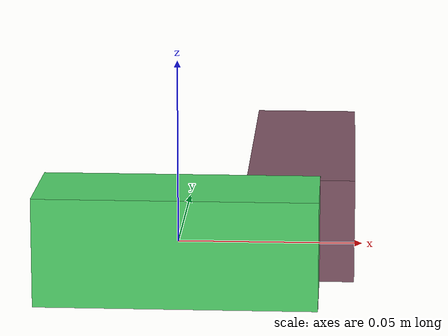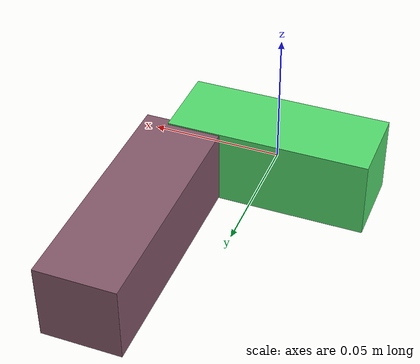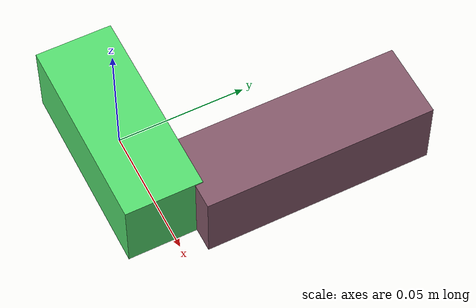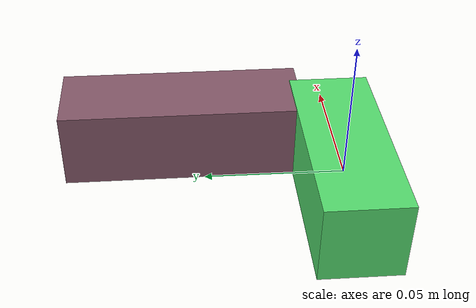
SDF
<sdf version="1.4"><world name="default"><model name="object0"><link name="link1"><pose>0 0 0 0 0 0</pose><inertial><pose>0 0 0 0 0 0</pose><mass>0.04147492426729149</mass><inertia><ixx>6.221238640093724e-06</ixx><ixy>0</ixy><iyy>2.3499249071678968e-05</iyy><ixz>0</ixz><iyz>0</iyz><izz>2.3499249071678968e-05</izz></inertia></inertial><visual name="link1_visual"><pose>0 0  0 0 0 0</pose><geometry><box><size>0.07680541530979906 0.03 0.03</size></box></geometry><material><diffuse>0.3320760393231424 0.8654815764941686 0.43408741857636257 1</diffuse></material></visual><collision><pose>0 0  0 0 0 0</pose><geometry><box><size>0.07680541530979906 0.03 0.03</size></box></geometry></collision></link><link name="link2"><pose>0.0330432867813435 0.05714439377331838 0 0 0 0</pose><inertial><pose>0 0 0 0 0 0</pose><mass>0.04874278262651752</mass><inertia><ixx>3.6511041786248144e-05</ixx><ixy>0</ixy><iyy>7.07176537939725e-06</iyy><ixz>0</ixz><iyz>0</iyz><izz>3.675069380082852e-05</izz></inertia></inertial><visual name="link2_visual"><pose>0 0  0 0 0 0</pose><geometry><box><size>0.03 0.09026441227132875 0.028999999999999998</size></box></geometry><material><diffuse>0.5206489186598598 0.34844872741423566 0.41503220855322387 1</diffuse></material></visual><collision><pose>0 0  0 0 0 0</pose><geometry><box><size>0.03 0.09026441227132875 0.028999999999999998</size></box></geometry></collision></link><joint name="link_joint_0" type="fixed"><parent>link1</parent><child>link2</child><pose>0 0 0 0 0 0</pose><axis><xyz>0 0 1</xyz></axis></joint></model></world></sdf>
